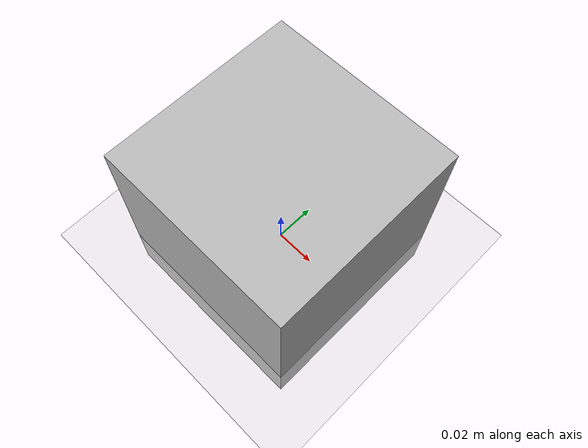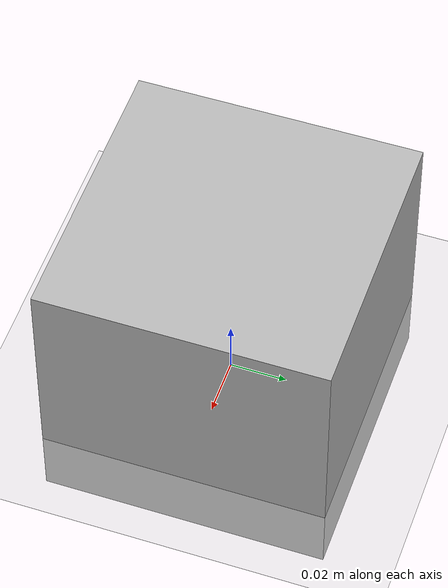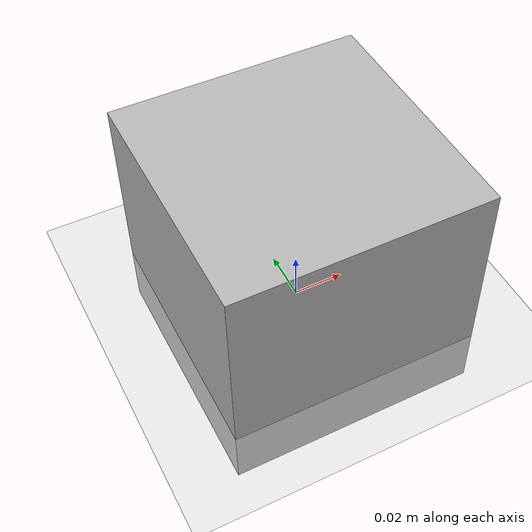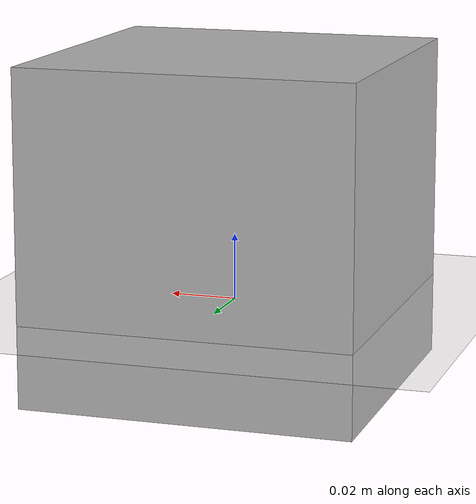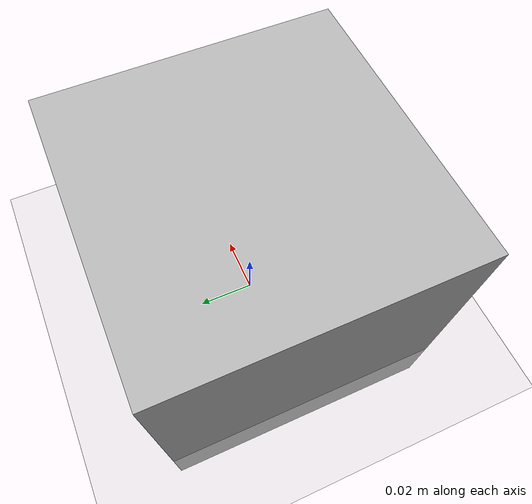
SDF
<?xml version="1.0" ?>
<sdf version="1.5">
  <world name="default">
    <scene>
        <origin_visual>0</origin_visual>
        <grid>0</grid>
                <ambient>0.4 0.4 0.4 1</ambient>
                <diffuse>0.4 0.4 0.4 1</diffuse>

    </scene>
    <physics type="ode">
      <max_step_size>0.003</max_step_size>

      <!-- Run as fast as possible -->
      <real_time_update_rate>0.0</real_time_update_rate>
      <ode>
        <constraints>
          <!-- Simulator.cpp -->
          <erp>0.1</erp>
          <cfm>10e-6</cfm>

          <!-- Making this smaller seems to decrease rather than increase stability. -->
          <contact_max_correcting_vel>100</contact_max_correcting_vel>
          <contact_surface_layer>1e-8</contact_surface_layer>
        </constraints>
        <solver>
          <type>quick</type>
        </solver>
      </ode>
    </physics>

    <!-- A global light source -->
    <include>
      <uri>model://sun</uri>
    </include>
    <include>
      <uri>model://tol_ground</uri>
    </include>
    <include>
      <uri>model://box</uri>
    </include>
    <plugin name="tol-control" filename="libtolworldcontrol.so" />
  </world>
</sdf>

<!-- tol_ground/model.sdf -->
<sdf version="1.5">
<!-- Custom ground plane -->
  <model name="tol_ground">
    <static>true</static>
    <link name="link">
      <collision name="collision">
        <geometry>
          <plane>
            <normal>0 0 1</normal>
            <size>100 100</size>
          </plane>
        </geometry>
        <surface>
          <friction>
            <ode>
              <!-- RobogenCollision.cpp -->
              <mu>1</mu>
              <mu2>1</mu2>
              <slip1>0.01</slip1>
              <slip2>0.01</slip2>
            </ode>
          </friction>
          <contact>
            <ode>
              <kd>9.000000e+04</kd>
              <kp>2.000000e+06</kp>
            </ode>
          </contact>
        </surface>
      </collision>
      <visual name="visual">
        <cast_shadows>false</cast_shadows>
        <geometry>
          <plane>
            <normal>0 0 1</normal>
            <size>100 100</size>
          </plane>
        </geometry>
        <material>
          <script>
            <uri>model://tol_ground/materials/scripts</uri>
            <uri>model://tol_ground/materials/textures</uri>
            <name>Floor/Concrete1</name>
          </script>
        </material>
      </visual>
    </link>
  </model>
<!-- END Custom ground plane -->
</sdf>

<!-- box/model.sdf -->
<sdf version="1.5">
<model name="box">
  <pose>0 0.0 0.025 0 0 0</pose>
  <static>false</static>
    <link name="link">
        <gravity>0</gravity>
      <visual name="visual">
        <geometry>
          <box>
            <size>0.1 0.1 0.1</size>
          </box>
        </geometry>
        <material>
          <emissive>0.3 0.5 0.3 1</emissive>
        </material>
      </visual>
    </link>
  </model>
</sdf>
